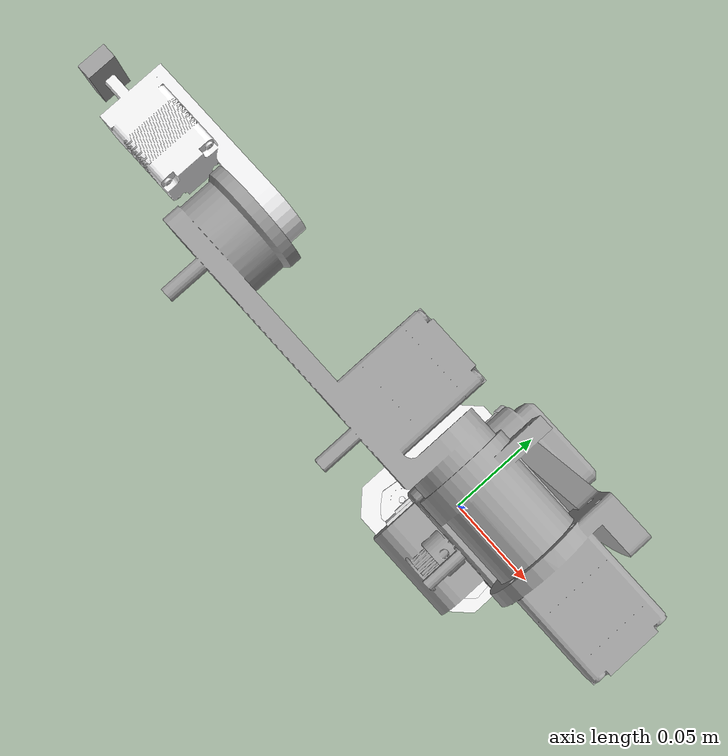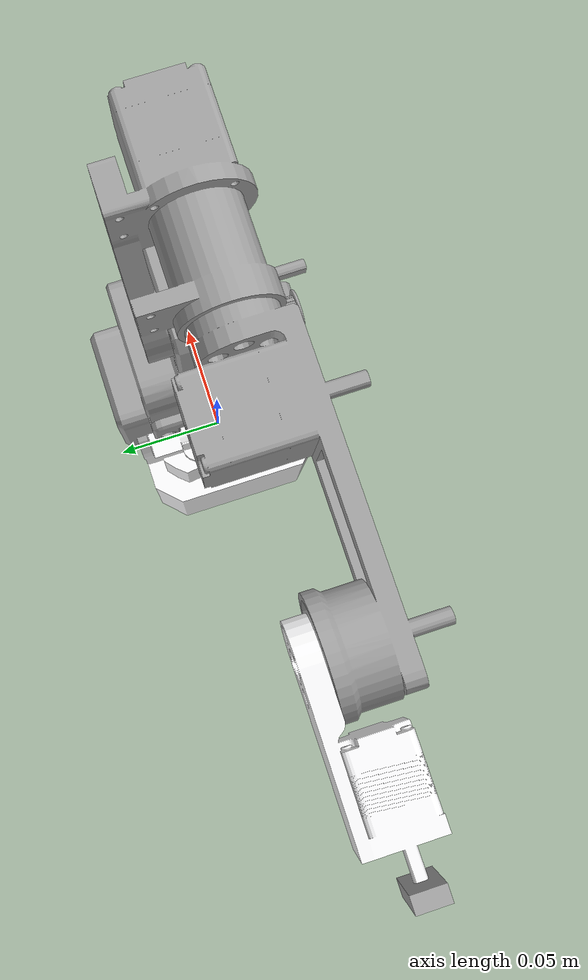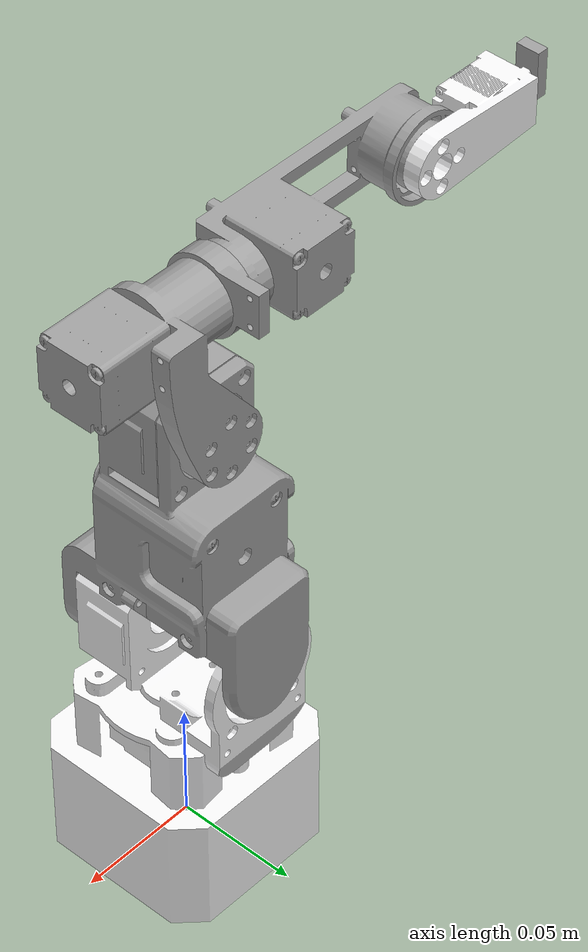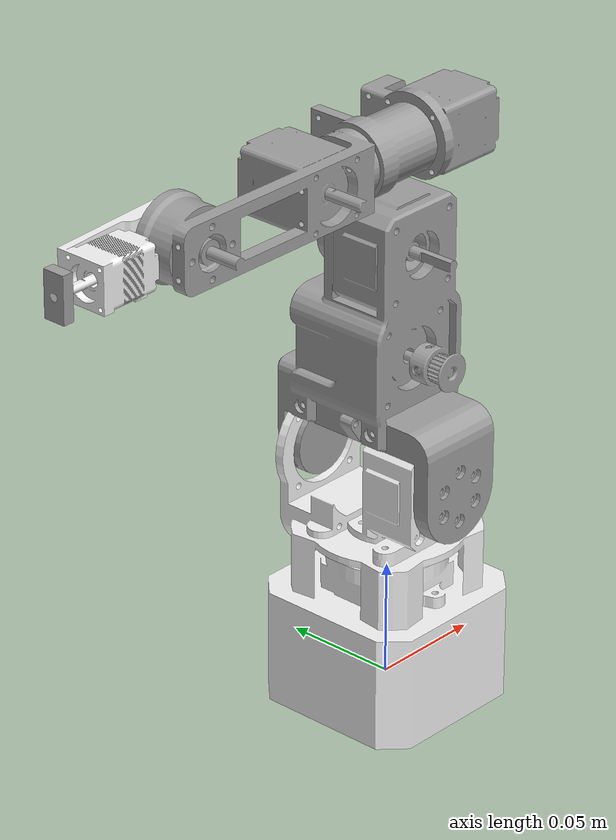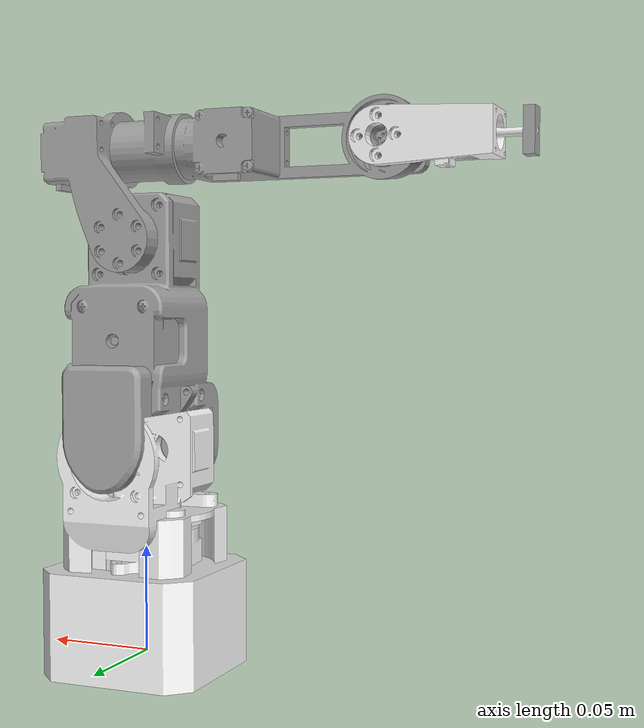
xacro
<?xml version="1.0"?>
<robot xmlns:xacro="http://www.ros.org/wiki/xacro" name="robo6">

    <!-- Used for fixing robot to Gazebo 'base_link' 将机械手的基座固定在世界坐标上-->
    <link name="world"/>
    <joint name="fixed" type="fixed">
        <parent link="world"/>
        <child link="base_link"/>
    </joint>

    <xacro:include filename="$(find robo6)/urdf/robo6gazebo.urdf" />

    <!-- 对一些link进行gazebo的属性设置 -->
    <gazebo reference="base_link">
        <material>Gazebo/Purple</material>
        <self_collide>false</self_collide>
        <gravity>false</gravity>
    </gazebo>
    <gazebo reference="Link1">
        <material>Gazebo/Purple</material>
        <self_collide>false</self_collide>
        <gravity>false</gravity>
    </gazebo>
    <gazebo reference="Link2">
        <material>Gazebo/Red</material>
        <self_collide>false</self_collide>
        <gravity>false</gravity>
    </gazebo>
    <gazebo reference="Link3">
        <material>Gazebo/Blue</material>
        <self_collide>false</self_collide>
        <gravity>false</gravity>
    </gazebo>
    <gazebo reference="Link4">
        <material>Gazebo/Green</material>
        <self_collide>false</self_collide>
        <gravity>false</gravity>
    </gazebo>
    <gazebo reference="Link5">
        <material>Gazebo/Yellow</material>
        <self_collide>false</self_collide>
        <gravity>false</gravity>
    </gazebo>
    <gazebo reference="Link6">
        <material>Gazebo/Orange</material>
        <self_collide>false</self_collide>
        <gravity>false</gravity>
    </gazebo>

    <!-- 设置不了静态，不知为啥 -->
    <gazebo>
        <is_static>true</is_static>
        <self_collide>false</self_collide>
    </gazebo>

            <ros2_control name="GazeboSystem" type="system">
            <hardware>
                <!-- By default, set up controllers for simulation. This won't work on real hardware -->
                <plugin>gazebo_ros2_control/GazeboSystem</plugin>
            </hardware>
            <joint name="Joint1">
                <command_interface name="position"/>
                <state_interface name="position">
                  <param name="initial_value">0</param>
                </state_interface>
                <state_interface name="velocity"/>
            </joint>
            <joint name="Joint2">
                <command_interface name="position"/>
                <state_interface name="position">
                  <param name="initial_value">0</param>
                </state_interface>
                <state_interface name="velocity"/>
            </joint>
            <joint name="Joint3">
                <command_interface name="position"/>
                <state_interface name="position">
                  <param name="initial_value">0</param>
                </state_interface>
                <state_interface name="velocity"/>
            </joint>
            <joint name="Joint4">
                <command_interface name="position"/>
                <state_interface name="position">
                  <param name="initial_value">0</param>
                </state_interface>
                <state_interface name="velocity"/>
            </joint>
            <joint name="Joint5">
                <command_interface name="position"/>
                <state_interface name="position">
                  <param name="initial_value">0</param>
                </state_interface>
                <state_interface name="velocity"/>
            </joint>
            <joint name="Joint6">
                <command_interface name="position"/>
                <state_interface name="position">
                  <param name="initial_value">0</param>
                </state_interface>
                <state_interface name="velocity"/>
            </joint>

        </ros2_control>

        <gazebo>
            <plugin name="gazebo_ros2_control" filename="libgazebo_ros2_control.so">
                <parameters>$(find mybot)/config/ros2_controllers.yaml</parameters>
                <robot_param>robot_description</robot_param>
                <robot_param_node>robot_state_publisher</robot_param_node>
            </plugin>
        </gazebo>

</robot>

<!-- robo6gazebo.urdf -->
<robot
  name="robo6">
  <link
    name="base_link">
    <inertial>
      <origin
        xyz="1.878E-06 0.028912 -1.3038E-05"
        rpy="0 0 0" />
      <mass
        value="0.12045" />
      <inertia
        ixx="0"
        ixy="0"
        ixz="0"
        iyy="0"
        iyz="0"
        izz="0" />
    </inertial>
    <visual>
      <origin
        xyz="0 0 0"
        rpy="0 0 0" />
      <geometry>
        <mesh
          filename="file://$(find robo6)/meshes/base_link.STL" />
      </geometry>
      <material
        name="">
        <color
          rgba="0.96078 0.96078 0.96471 1" />
      </material>
    </visual>
    <collision>
      <origin
        xyz="0 0 1"
        rpy="0 0 0" />
      <geometry>
        <cylinder
          radius="0.01"
          length="0.01" />
      </geometry>
    </collision>
  </link>
  <link
    name="Link1">
    <inertial>
      <origin
        xyz="-4.92527363388455E-08 0.0349442574396109 0.000307533695580413"
        rpy="0 0 0" />
      <mass
        value="0.0659118172201022" />
      <inertia
        ixx="2.36472823445046E-05"
        ixy="-2.80763181176182E-11"
        ixz="-8.9871698594769E-12"
        iyy="3.18142849528654E-05"
        iyz="-1.84244071707729E-09"
        izz="2.94979037366588E-05" />
    </inertial>
    <visual>
      <origin
        xyz="0 0 0"
        rpy="0 0 0" />
      <geometry>
        <mesh
          filename="file://$(find robo6)/meshes/Link1.STL" />
      </geometry>
      <material
        name="">
        <color
          rgba="0.96078431372549 0.96078431372549 0.964705882352941 1" />
      </material>
    </visual>
    <collision>
      <origin
        xyz="0 0 0"
        rpy="0 0 0" />
      <geometry>
        <mesh
          filename="file://$(find robo6)/meshes/Link1.STL" />
      </geometry>
    </collision>
  </link>
  <joint
    name="Joint1"
    type="revolute">
    <origin
      xyz="0 0 0.0415"
      rpy="1.5707 0 0" />
    <parent
      link="base_link" />
    <child
      link="Link1" />
    <axis
      xyz="0 1 0" />
    <limit
      lower="-3.14"
      upper="3.14"
      effort="0"
      velocity="0" />
  </joint>
  <link
    name="Link2">
    <inertial>
      <origin
        xyz="5.24382262826091E-06 0.0536410224280989 -0.00443745142661563"
        rpy="0 0 0" />
      <mass
        value="0.15354999870256" />
      <inertia
        ixx="6.48684049795887E-05"
        ixy="-3.90286701622052E-11"
        ixz="-2.55081782957912E-09"
        iyy="4.61126385560208E-05"
        iyz="1.05957379714566E-06"
        izz="7.71458832673368E-05" />
    </inertial>
    <visual>
      <origin
        xyz="0 0 0"
        rpy="0 0 0" />
      <geometry>
        <mesh
          filename="file://$(find robo6)/meshes/Link2.STL" />
      </geometry>
      <material
        name="">
        <color
          rgba="0.627450980392157 0.627450980392157 0.627450980392157 1" />
      </material>
    </visual>
    <collision>
      <origin
        xyz="0 0 0"
        rpy="0 0 0" />
      <geometry>
        <mesh
          filename="file://$(find robo6)/meshes/Link2.STL" />
      </geometry>
    </collision>
  </link>
  <joint
    name="Joint2"
    type="revolute">
    <origin
      xyz="0 0.0535 0"
      rpy="0 0 0" />
    <parent
      link="Link1" />
    <child
      link="Link2" />
    <axis
      xyz="0 0 1" />
    <limit
      lower="-1"
      upper="1.57"
      effort="0"
      velocity="0" />
  </joint>
  <link
    name="Link3">
    <inertial>
      <origin
        xyz="0.0120475717228843 0.035035947202792 -0.00518320114030269"
        rpy="0 0 0" />
      <mass
        value="0.0676002455536992" />
      <inertia
        ixx="1.47656579114417E-05"
        ixy="-2.44665581059836E-06"
        ixz="6.15842251805329E-09"
        iyy="1.00493633448293E-05"
        iyz="-5.45934098629043E-07"
        izz="1.60840921021648E-05" />
    </inertial>
    <visual>
      <origin
        xyz="0 0 0"
        rpy="0 0 0" />
      <geometry>
        <mesh
          filename="file://$(find robo6)/meshes/Link3.STL" />
      </geometry>
      <material
        name="">
        <color
          rgba="0.627450980392157 0.627450980392157 0.627450980392157 1" />
      </material>
    </visual>
    <collision>
      <origin
        xyz="0 0 0"
        rpy="0 0 0" />
      <geometry>
        <mesh
          filename="file://$(find robo6)/meshes/Link3.STL" />
      </geometry>
    </collision>
  </link>
  <joint
    name="Joint3"
    type="revolute">
    <origin
      xyz="0 0.099 0"
      rpy="0 0 0" />
    <parent
      link="Link2" />
    <child
      link="Link3" />
    <axis
      xyz="0 0 1" />
    <limit
      lower="-1"
      upper="1"
      effort="0"
      velocity="0" />
  </joint>
  <link
    name="Link4">
    <inertial>
      <origin
        xyz="-0.0512830210113846 -3.4037477542187E-05 0.000741205706793905"
        rpy="0 0 0" />
      <mass
        value="0.0504466173853801" />
      <inertia
        ixx="7.08603575326675E-06"
        ixy="-2.26434036239613E-11"
        ixz="1.54581220155489E-06"
        iyy="2.21919182212061E-05"
        iyz="-2.04152826538135E-08"
        izz="2.23021426371424E-05" />
    </inertial>
    <visual>
      <origin
        xyz="0 0 0"
        rpy="0 0 0" />
      <geometry>
        <mesh
          filename="file://$(find robo6)/meshes/Link4.STL" />
      </geometry>
      <material
        name="">
        <color
          rgba="0.627450980392157 0.627450980392157 0.627450980392157 1" />
      </material>
    </visual>
    <collision>
      <origin
        xyz="0 0 0"
        rpy="0 0 0" />
      <geometry>
        <mesh
          filename="file://$(find robo6)/meshes/Link4.STL" />
      </geometry>
    </collision>
  </link>
  <joint
    name="Joint4"
    type="revolute">
    <origin
      xyz="-0.014187 0.041909 0"
      rpy="0 0 0" />
    <parent
      link="Link3" />
    <child
      link="Link4" />
    <axis
      xyz="1 0 0" />
    <limit
      lower="-3.14"
      upper="3.14"
      effort="0"
      velocity="0" />
  </joint>
  <link
    name="Link5">
    <inertial>
      <origin
        xyz="-0.028276116522767 -0.000114515854134301 -0.00387887665408256"
        rpy="0 0 0" />
      <mass
        value="0.017028601675043" />
      <inertia
        ixx="1.11109669358206E-06"
        ixy="-5.36640838203033E-10"
        ixz="2.17603339184217E-07"
        iyy="3.63221196171804E-06"
        iyz="-3.22059682421302E-13"
        izz="3.7981188308525E-06" />
    </inertial>
    <visual>
      <origin
        xyz="0 0 0"
        rpy="0 0 0" />
      <geometry>
        <mesh
          filename="file://$(find robo6)/meshes/Link5.STL" />
      </geometry>
      <material
        name="">
        <color
          rgba="0.96078431372549 0.96078431372549 0.964705882352941 1" />
      </material>
    </visual>
    <collision>
      <origin
        xyz="0 0 0"
        rpy="0 0 0" />
      <geometry>
        <mesh
          filename="file://$(find robo6)/meshes/Link5.STL" />
      </geometry>
    </collision>
  </link>
  <joint
    name="Joint5"
    type="revolute">
    <origin
      xyz="-0.10397 0 0"
      rpy="0 0 0" />
    <parent
      link="Link4" />
    <child
      link="Link5" />
    <axis
      xyz="0 0 1" />
    <limit
      lower="-2.6"
      upper="2.6"
      effort="0"
      velocity="0" />
  </joint>
  <link
    name="Link6">
    <inertial>
      <origin
        xyz="-0.00527028329076445 3.45215899660856E-06 -5.55111512312578E-17"
        rpy="0 0 0" />
      <mass
        value="0.000951131899037555" />
      <inertia
        ixx="4.15899516019936E-08"
        ixy="2.14226853954163E-24"
        ixz="7.47047490711953E-24"
        iyy="1.0274043664262E-08"
        iyz="-8.27180612553028E-25"
        izz="3.52789575170549E-08" />
    </inertial>
    <visual>
      <origin
        xyz="0 0 0"
        rpy="0 0 0" />
      <geometry>
        <mesh
          filename="file://$(find robo6)/meshes/Link6.STL" />
      </geometry>
      <material
        name="">
        <color
          rgba="0.627450980392157 0.627450980392157 0.627450980392157 1" />
      </material>
    </visual>
    <collision>
      <origin
        xyz="0 0 0"
        rpy="0 0 0" />
      <geometry>
        <mesh
          filename="file://$(find robo6)/meshes/Link6.STL" />
      </geometry>
    </collision>
  </link>
  <joint
    name="Joint6"
    type="revolute">
    <origin
      xyz="-0.05773 0 0"
      rpy="0 0 0" />
    <parent
      link="Link5" />
    <child
      link="Link6" />
    <axis
      xyz="1 0 0" />
    <limit
      lower="-3.14"
      upper="3.14"
      effort="0"
      velocity="0" />
  </joint>
</robot>
